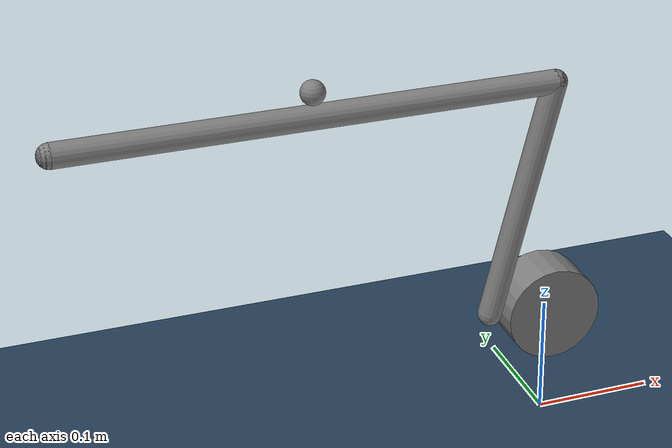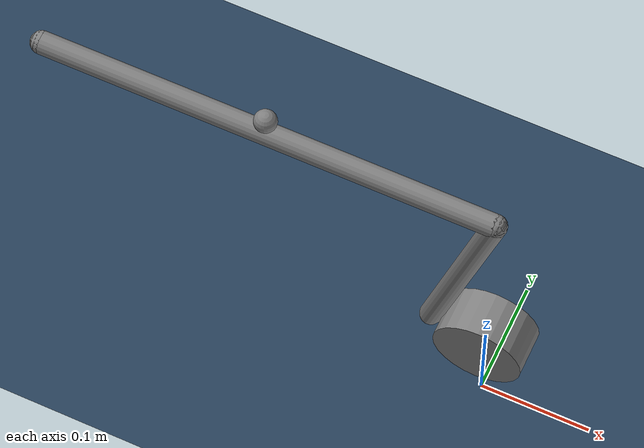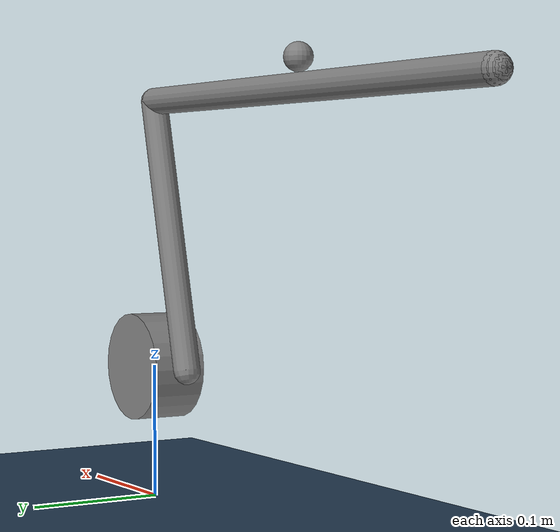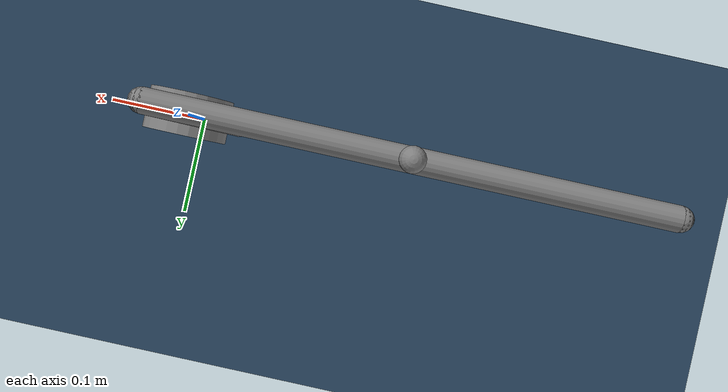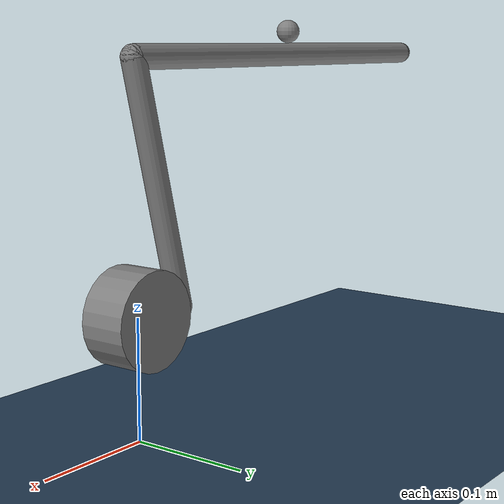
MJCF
<mujoco>
    <asset>
        <texture name="grid" type="2d" builtin="checker" width="512" height="512" rgb1=".1 .2 .3" rgb2=".2 .3 .4"/>
        <material name="grid" texture="grid" texrepeat="1 1" texuniform="true" reflectance=".2"/>
    </asset>

    <worldbody>
        <light diffuse=".5 .5 .5" pos="0 0 3" dir="0 0 -1" />
        <geom type="plane" size="1 1 .1" material="grid" />

        <!-- Ajustar gear para estar entre 90 y 270° (solo moverse en la mitad izquierda) -->
        <!-- Fixed gear body, connected to the actuator -->
        <body name="gear" pos="0 0 0.1">
            <!-- Gear joint - Allow it to rotate -->
            <joint name="gear_joint" type="hinge" axis="0 1 0" damping="1" />
            <geom type="cylinder" size="0.04 0.02" euler="90 0 0" />
            <!-- Pole, connected to the gear and with 1 dof to be comfortably attached to the gear -->
            <body name="pole" pos="-0.05 0 0">
                <joint type="hinge" axis="0 1 0"/>
                <geom type="capsule" fromto="0 0 0 .05 0 0.2" size="0.01"/>
                <!-- The beam where the ball will be attached -->
                <body name="beam" pos=".05 0 0.2">
                    <geom type="capsule" fromto="0 0 0 -.4 0 0" size="0.01"/>
                    <joint name="beam_joint" type="hinge" axis="0 1 0" pos="0 0 0" limited="true" range="-30 30"/>
                    <!-- The ball to be controlled -->
                    <body name="ball" pos="-.2 0 0.02">
                        <joint name="ball_joint" type="slide" axis="1 0 0" pos="0 0 0" limited="true" range="-0.2 0.2"/>
                        <geom type="sphere" size="0.01" mass="0.028"/>
                    </body>

                    <!-- Attempt to fix the beam to the world -->
                    <body name="fixed_end1" pos="-.4 0 0">
                        <joint type="ball" />
                        <geom size=".01 .01 .01"/>
                    </body>
                </body>
            </body>
        </body>

    </worldbody>

    <equality>
        <weld body1="fixed_end1" anchor="-.4 0 .3" />
    </equality>

    <actuator>
        <motor gear="10" joint="gear_joint" name="beam_motor"/>
    </actuator>
</mujoco>
